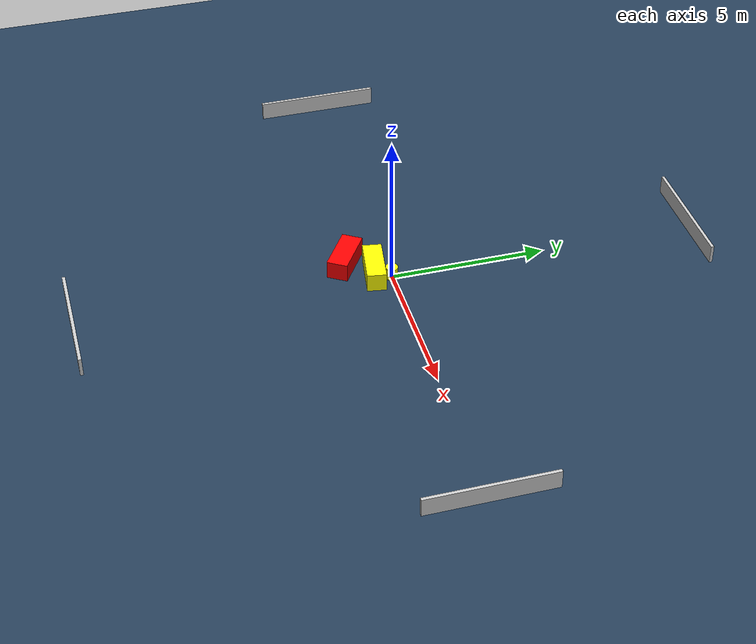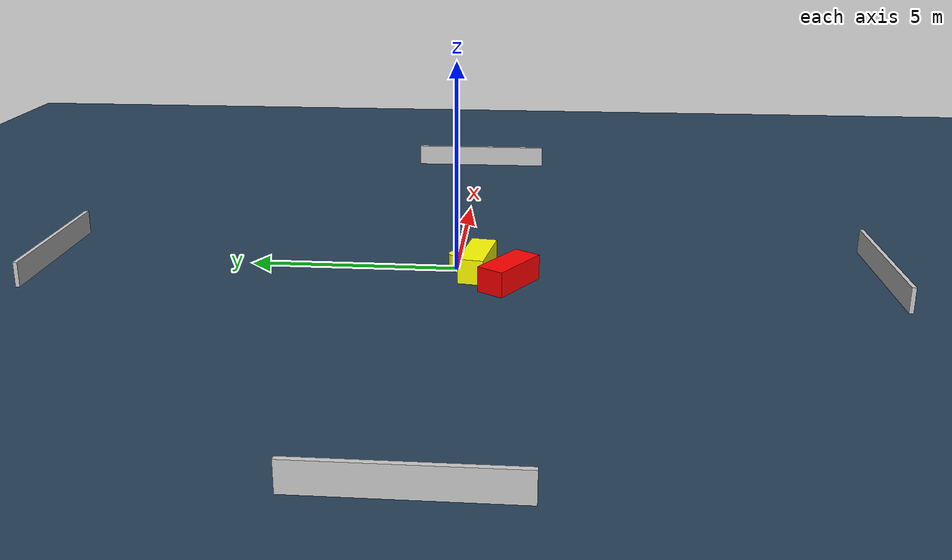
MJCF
<?xml version="1.0" ?>
<mujoco model="generated_environment">
  <option timestep="0.01" integrator="RK4" cone="elliptic"/>
  <default>
    <geom density="1"/>
  </default>
  <asset>
    <texture builtin="gradient" height="3072" name="skybox" rgb1="0.3 0.5 0.7" rgb2="0 0 0" type="skybox" width="512"/>
    <texture builtin="checker" height="300" name="groundplane" rgb1="0.2 0.3 0.4" rgb2="0.1 0.2 0.3" type="2d" width="300"/>
    <material name="groundplane" reflectance="0.2" texrepeat="5 5" texture="groundplane"/>
  </asset>
  <worldbody>
    <light dir="0 0 -1" directional="true" pos="0 0 1.5"/>
    <geom condim="3" friction="0.5 0.005 0.001" material="groundplane" name="floor" pos="0 0 0" size="0 0 0.05" type="plane"/>
    <body name="walls">
      <geom name="wall_1" condim="4" pos="-10.0 0.0 0.3" rgba="0.800000011920929 0.800000011920929 0.800000011920929 1.0" size="0.05 2.0 0.3" type="box"/>
      <geom name="wall_2" condim="4" pos="10.0 0.0 0.3" rgba="0.800000011920929 0.800000011920929 0.800000011920929 1.0" size="0.05 2.0 0.3" type="box"/>
      <geom name="wall_3" condim="4" pos="0.0 -10.0 0.3" rgba="0.800000011920929 0.800000011920929 0.800000011920929 1.0" size="2.0 0.05 0.3" type="box"/>
      <geom name="wall_4" condim="4" pos="0.0 10.0 0.3" rgba="0.800000011920929 0.800000011920929 0.800000011920929 1.0" size="2.0 0.05 0.3" type="box"/>
    </body>
    <body name="robot">
      <joint name="joint_x" type="slide" pos="0 0 0" axis="1 0 0"/>
      <joint name="joint_y" type="slide" pos="0 0 0" axis="0 1 0"/>
      <geom name="robot" type="cylinder" pos="0.0 0.0 0.2" size="0.2 0.2 0.0" mass="5.0" friction="1.0 0.005 0.0001" condim="4" rgba="1.0 1.0 0.0 1.0"/>
    </body>
    <body name="obstacle_1_movable">
      <geom name="obstacle_1_movable" condim="4" pos="-0.24443482859261453 -0.5033257318858264 0.3" euler="0 0 261.03226942407815" friction="0.0 0.005 0.001" rgba="1.0 1.0 0.0 1.0" size="0.3062821905228067 0.7868551313368222 0.3" type="box" mass="0.1"/>
      <joint type="free"/>
    </body>
    <body name="obstacle_2_static">
      <geom name="obstacle_2_static" condim="4" pos="-0.9807656648577512 -1.271317925688095 0.3" euler="0 0 147.02793422636444" friction="0.0 0.005 0.001" rgba="1.0 0.0 0.0 1.0" size="0.7618386250028062 0.33544990719947154 0.3" type="box"/>
    </body>
  </worldbody>
  <actuator>
    <motor name="actuator_x" joint="joint_x" gear="1" ctrlrange="-1 1"/>
    <motor name="actuator_y" joint="joint_y" gear="1" ctrlrange="-1 1"/>
  </actuator>
</mujoco>
